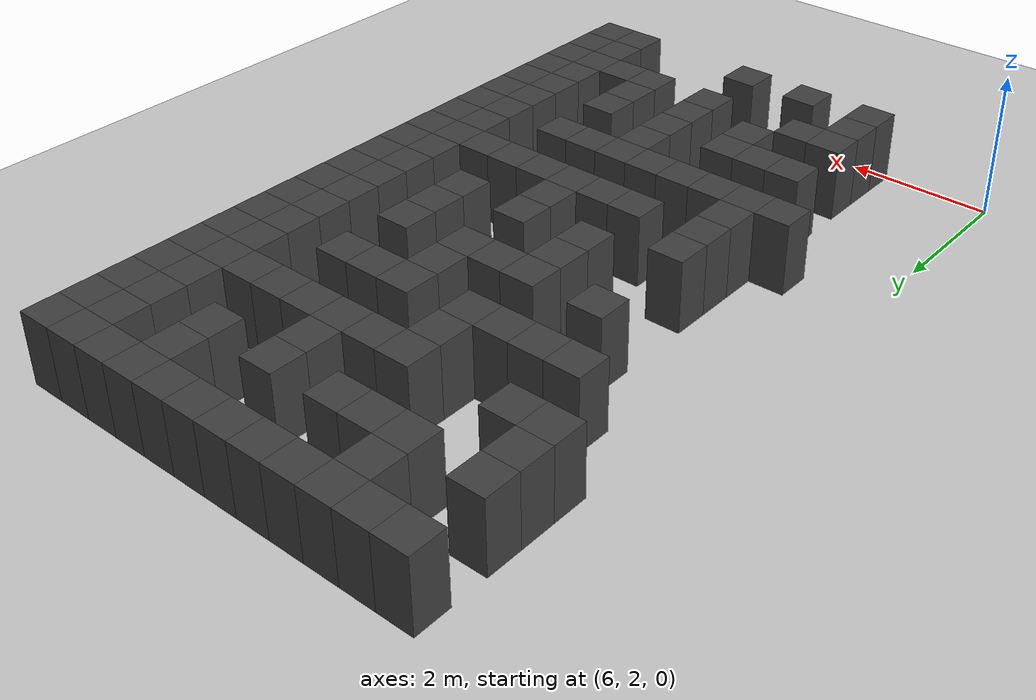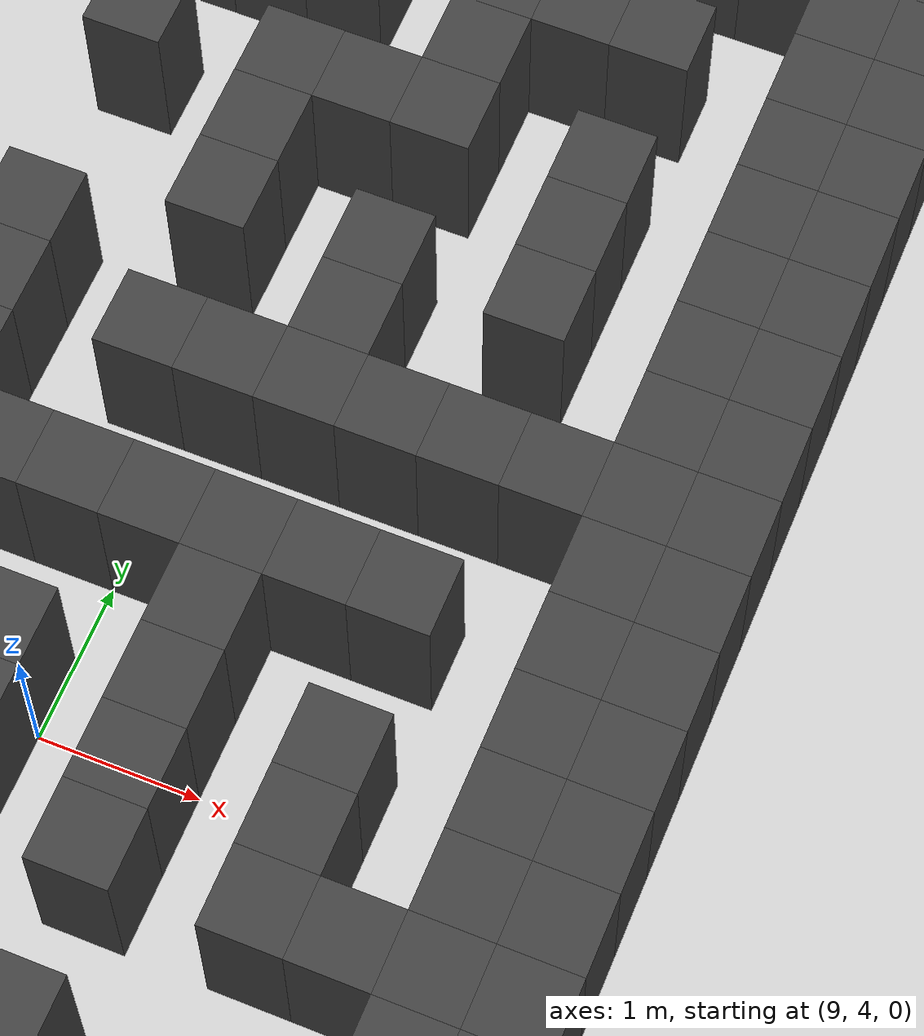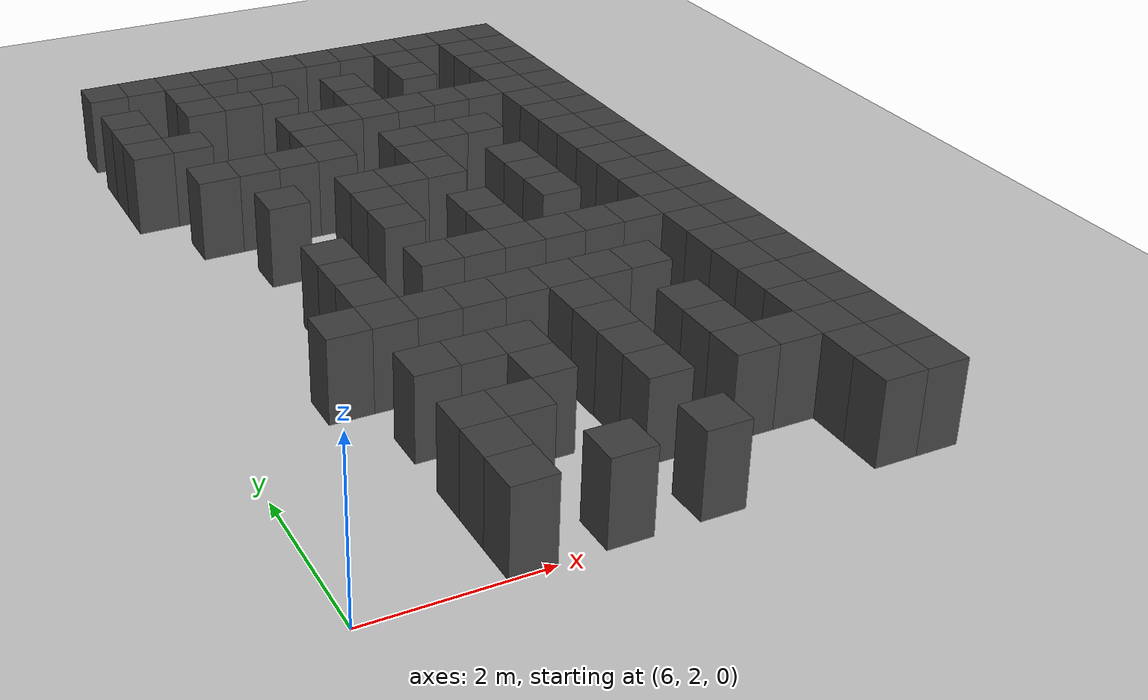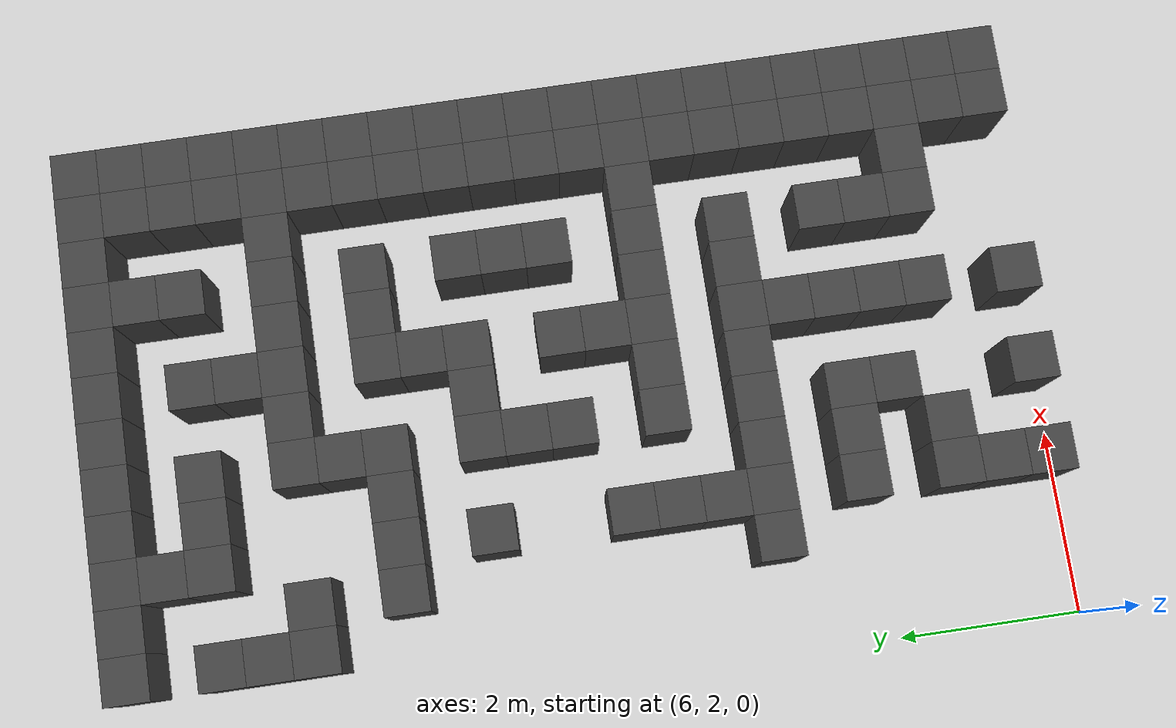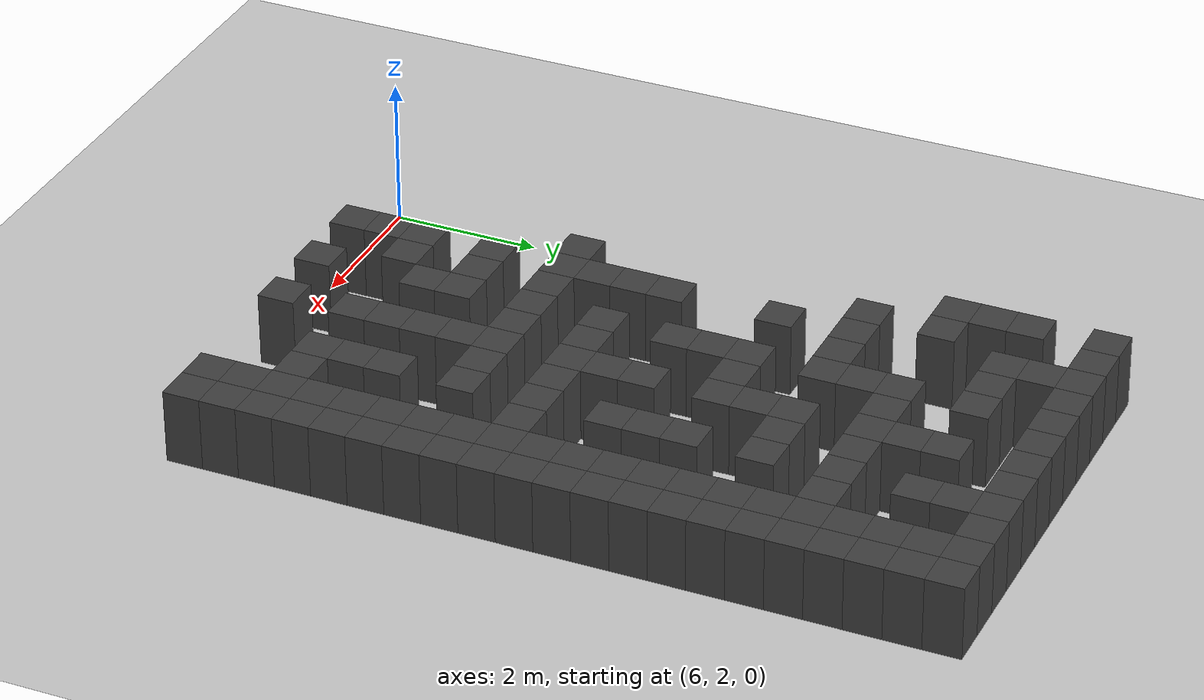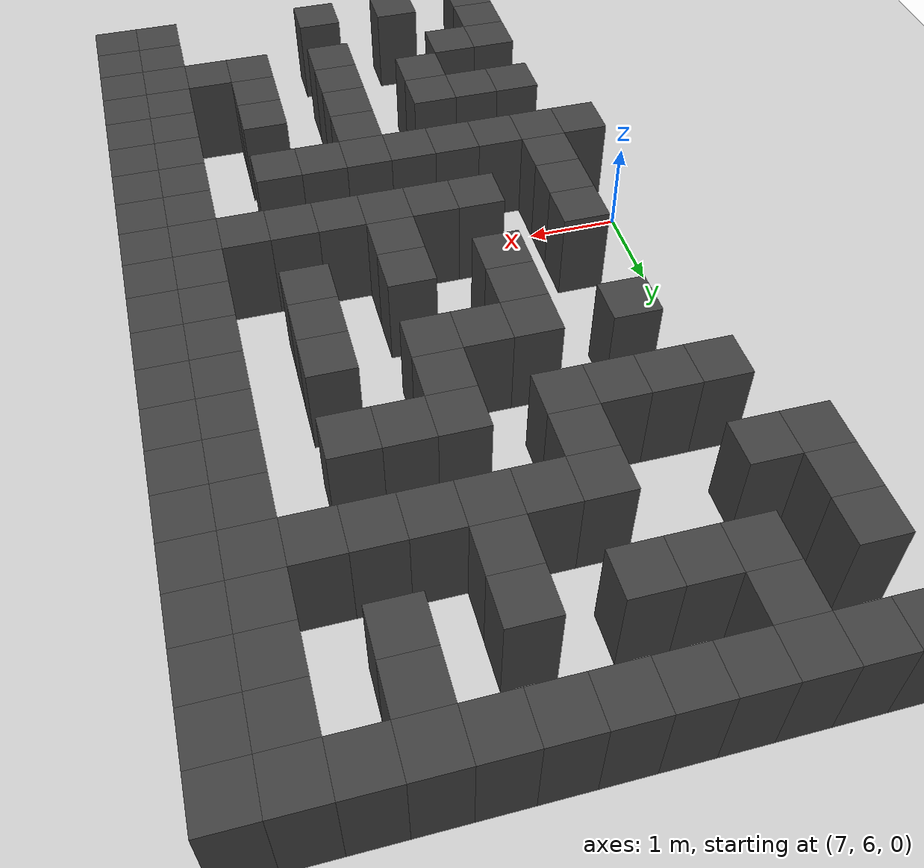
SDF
<sdf version="1.7">
 <world name="map_16783">
  <model name="ground_plane">
   <static>true</static>
   <link name="link">
    <collision name="collision">
     <geometry><plane><normal>0 0 1</normal><size>200 200</size></plane></geometry>
    </collision>
    <visual name="visual">
     <geometry><plane><normal>0 0 1</normal><size>200 200</size></plane></geometry>
     <material><ambient>0.8 0.8 0.8 1</ambient><diffuse>0.8 0.8 0.8 1</diffuse></material>
    </visual>
   </link>
  </model>
  <model name="maze_environment">
   <static>true</static>
   <link name="wall_38">
    <pose>6.750 12.250 0.500 0 0 0</pose>
    <collision name="col"><geometry><box><size>0.5 0.5 1.0</size></box></geometry></collision>
    <visual name="vis">
     <geometry><box><size>0.5 0.5 1.0</size></box></geometry>
     <material><ambient>0.15 0.15 0.15 1</ambient><diffuse>0.25 0.25 0.25 1</diffuse></material>
    </visual>
   </link>
   <link name="wall_39">
    <pose>7.250 12.250 0.500 0 0 0</pose>
    <collision name="col"><geometry><box><size>0.5 0.5 1.0</size></box></geometry></collision>
    <visual name="vis">
     <geometry><box><size>0.5 0.5 1.0</size></box></geometry>
     <material><ambient>0.15 0.15 0.15 1</ambient><diffuse>0.25 0.25 0.25 1</diffuse></material>
    </visual>
   </link>
   <link name="wall_40">
    <pose>7.750 12.250 0.500 0 0 0</pose>
    <collision name="col"><geometry><box><size>0.5 0.5 1.0</size></box></geometry></collision>
    <visual name="vis">
     <geometry><box><size>0.5 0.5 1.0</size></box></geometry>
     <material><ambient>0.15 0.15 0.15 1</ambient><diffuse>0.25 0.25 0.25 1</diffuse></material>
    </visual>
   </link>
   <link name="wall_41">
    <pose>8.250 12.250 0.500 0 0 0</pose>
    <collision name="col"><geometry><box><size>0.5 0.5 1.0</size></box></geometry></collision>
    <visual name="vis">
     <geometry><box><size>0.5 0.5 1.0</size></box></geometry>
     <material><ambient>0.15 0.15 0.15 1</ambient><diffuse>0.25 0.25 0.25 1</diffuse></material>
    </visual>
   </link>
   <link name="wall_42">
    <pose>8.750 12.250 0.500 0 0 0</pose>
    <collision name="col"><geometry><box><size>0.5 0.5 1.0</size></box></geometry></collision>
    <visual name="vis">
     <geometry><box><size>0.5 0.5 1.0</size></box></geometry>
     <material><ambient>0.15 0.15 0.15 1</ambient><diffuse>0.25 0.25 0.25 1</diffuse></material>
    </visual>
   </link>
   <link name="wall_43">
    <pose>9.250 12.250 0.500 0 0 0</pose>
    <collision name="col"><geometry><box><size>0.5 0.5 1.0</size></box></geometry></collision>
    <visual name="vis">
     <geometry><box><size>0.5 0.5 1.0</size></box></geometry>
     <material><ambient>0.15 0.15 0.15 1</ambient><diffuse>0.25 0.25 0.25 1</diffuse></material>
    </visual>
   </link>
   <link name="wall_44">
    <pose>9.750 12.250 0.500 0 0 0</pose>
    <collision name="col"><geometry><box><size>0.5 0.5 1.0</size></box></geometry></collision>
    <visual name="vis">
     <geometry><box><size>0.5 0.5 1.0</size></box></geometry>
     <material><ambient>0.15 0.15 0.15 1</ambient><diffuse>0.25 0.25 0.25 1</diffuse></material>
    </visual>
   </link>
   <link name="wall_45">
    <pose>10.250 12.250 0.500 0 0 0</pose>
    <collision name="col"><geometry><box><size>0.5 0.5 1.0</size></box></geometry></collision>
    <visual name="vis">
     <geometry><box><size>0.5 0.5 1.0</size></box></geometry>
     <material><ambient>0.15 0.15 0.15 1</ambient><diffuse>0.25 0.25 0.25 1</diffuse></material>
    </visual>
   </link>
   <link name="wall_46">
    <pose>10.750 12.250 0.500 0 0 0</pose>
    <collision name="col"><geometry><box><size>0.5 0.5 1.0</size></box></geometry></collision>
    <visual name="vis">
     <geometry><box><size>0.5 0.5 1.0</size></box></geometry>
     <material><ambient>0.15 0.15 0.15 1</ambient><diffuse>0.25 0.25 0.25 1</diffuse></material>
    </visual>
   </link>
   <link name="wall_47">
    <pose>11.250 12.250 0.500 0 0 0</pose>
    <collision name="col"><geometry><box><size>0.5 0.5 1.0</size></box></geometry></collision>
    <visual name="vis">
     <geometry><box><size>0.5 0.5 1.0</size></box></geometry>
     <material><ambient>0.15 0.15 0.15 1</ambient><diffuse>0.25 0.25 0.25 1</diffuse></material>
    </visual>
   </link>
   <link name="wall_48">
    <pose>11.750 12.250 0.500 0 0 0</pose>
    <collision name="col"><geometry><box><size>0.5 0.5 1.0</size></box></geometry></collision>
    <visual name="vis">
     <geometry><box><size>0.5 0.5 1.0</size></box></geometry>
     <material><ambient>0.15 0.15 0.15 1</ambient><diffuse>0.25 0.25 0.25 1</diffuse></material>
    </visual>
   </link>
   <link name="wall_49">
    <pose>12.250 12.250 0.500 0 0 0</pose>
    <collision name="col"><geometry><box><size>0.5 0.5 1.0</size></box></geometry></collision>
    <visual name="vis">
     <geometry><box><size>0.5 0.5 1.0</size></box></geometry>
     <material><ambient>0.15 0.15 0.15 1</ambient><diffuse>0.25 0.25 0.25 1</diffuse></material>
    </visual>
   </link>
   <link name="wall_56">
    <pose>7.750 11.750 0.500 0 0 0</pose>
    <collision name="col"><geometry><box><size>0.5 0.5 1.0</size></box></geometry></collision>
    <visual name="vis">
     <geometry><box><size>0.5 0.5 1.0</size></box></geometry>
     <material><ambient>0.15 0.15 0.15 1</ambient><diffuse>0.25 0.25 0.25 1</diffuse></material>
    </visual>
   </link>
   <link name="wall_57">
    <pose>10.750 11.750 0.500 0 0 0</pose>
    <collision name="col"><geometry><box><size>0.5 0.5 1.0</size></box></geometry></collision>
    <visual name="vis">
     <geometry><box><size>0.5 0.5 1.0</size></box></geometry>
     <material><ambient>0.15 0.15 0.15 1</ambient><diffuse>0.25 0.25 0.25 1</diffuse></material>
    </visual>
   </link>
   <link name="wall_58">
    <pose>11.750 11.750 0.500 0 0 0</pose>
    <collision name="col"><geometry><box><size>0.5 0.5 1.0</size></box></geometry></collision>
    <visual name="vis">
     <geometry><box><size>0.5 0.5 1.0</size></box></geometry>
     <material><ambient>0.15 0.15 0.15 1</ambient><diffuse>0.25 0.25 0.25 1</diffuse></material>
    </visual>
   </link>
   <link name="wall_59">
    <pose>12.250 11.750 0.500 0 0 0</pose>
    <collision name="col"><geometry><box><size>0.5 0.5 1.0</size></box></geometry></collision>
    <visual name="vis">
     <geometry><box><size>0.5 0.5 1.0</size></box></geometry>
     <material><ambient>0.15 0.15 0.15 1</ambient><diffuse>0.25 0.25 0.25 1</diffuse></material>
    </visual>
   </link>
   <link name="wall_85">
    <pose>6.750 11.250 0.500 0 0 0</pose>
    <collision name="col"><geometry><box><size>0.5 0.5 1.0</size></box></geometry></collision>
    <visual name="vis">
     <geometry><box><size>0.5 0.5 1.0</size></box></geometry>
     <material><ambient>0.15 0.15 0.15 1</ambient><diffuse>0.25 0.25 0.25 1</diffuse></material>
    </visual>
   </link>
   <link name="wall_86">
    <pose>7.750 11.250 0.500 0 0 0</pose>
    <collision name="col"><geometry><box><size>0.5 0.5 1.0</size></box></geometry></collision>
    <visual name="vis">
     <geometry><box><size>0.5 0.5 1.0</size></box></geometry>
     <material><ambient>0.15 0.15 0.15 1</ambient><diffuse>0.25 0.25 0.25 1</diffuse></material>
    </visual>
   </link>
   <link name="wall_87">
    <pose>8.250 11.250 0.500 0 0 0</pose>
    <collision name="col"><geometry><box><size>0.5 0.5 1.0</size></box></geometry></collision>
    <visual name="vis">
     <geometry><box><size>0.5 0.5 1.0</size></box></geometry>
     <material><ambient>0.15 0.15 0.15 1</ambient><diffuse>0.25 0.25 0.25 1</diffuse></material>
    </visual>
   </link>
   <link name="wall_88">
    <pose>8.750 11.250 0.500 0 0 0</pose>
    <collision name="col"><geometry><box><size>0.5 0.5 1.0</size></box></geometry></collision>
    <visual name="vis">
     <geometry><box><size>0.5 0.5 1.0</size></box></geometry>
     <material><ambient>0.15 0.15 0.15 1</ambient><diffuse>0.25 0.25 0.25 1</diffuse></material>
    </visual>
   </link>
   <link name="wall_89">
    <pose>9.750 11.250 0.500 0 0 0</pose>
    <collision name="col"><geometry><box><size>0.5 0.5 1.0</size></box></geometry></collision>
    <visual name="vis">
     <geometry><box><size>0.5 0.5 1.0</size></box></geometry>
     <material><ambient>0.15 0.15 0.15 1</ambient><diffuse>0.25 0.25 0.25 1</diffuse></material>
    </visual>
   </link>
   <link name="wall_90">
    <pose>10.750 11.250 0.500 0 0 0</pose>
    <collision name="col"><geometry><box><size>0.5 0.5 1.0</size></box></geometry></collision>
    <visual name="vis">
     <geometry><box><size>0.5 0.5 1.0</size></box></geometry>
     <material><ambient>0.15 0.15 0.15 1</ambient><diffuse>0.25 0.25 0.25 1</diffuse></material>
    </visual>
   </link>
   <link name="wall_91">
    <pose>11.750 11.250 0.500 0 0 0</pose>
    <collision name="col"><geometry><box><size>0.5 0.5 1.0</size></box></geometry></collision>
    <visual name="vis">
     <geometry><box><size>0.5 0.5 1.0</size></box></geometry>
     <material><ambient>0.15 0.15 0.15 1</ambient><diffuse>0.25 0.25 0.25 1</diffuse></material>
    </visual>
   </link>
   <link name="wall_92">
    <pose>12.250 11.250 0.500 0 0 0</pose>
    <collision name="col"><geometry><box><size>0.5 0.5 1.0</size></box></geometry></collision>
    <visual name="vis">
     <geometry><box><size>0.5 0.5 1.0</size></box></geometry>
     <material><ambient>0.15 0.15 0.15 1</ambient><diffuse>0.25 0.25 0.25 1</diffuse></material>
    </visual>
   </link>
   <link name="wall_103">
    <pose>6.750 10.750 0.500 0 0 0</pose>
    <collision name="col"><geometry><box><size>0.5 0.5 1.0</size></box></geometry></collision>
    <visual name="vis">
     <geometry><box><size>0.5 0.5 1.0</size></box></geometry>
     <material><ambient>0.15 0.15 0.15 1</ambient><diffuse>0.25 0.25 0.25 1</diffuse></material>
    </visual>
   </link>
   <link name="wall_104">
    <pose>9.750 10.750 0.500 0 0 0</pose>
    <collision name="col"><geometry><box><size>0.5 0.5 1.0</size></box></geometry></collision>
    <visual name="vis">
     <geometry><box><size>0.5 0.5 1.0</size></box></geometry>
     <material><ambient>0.15 0.15 0.15 1</ambient><diffuse>0.25 0.25 0.25 1</diffuse></material>
    </visual>
   </link>
   <link name="wall_105">
    <pose>11.750 10.750 0.500 0 0 0</pose>
    <collision name="col"><geometry><box><size>0.5 0.5 1.0</size></box></geometry></collision>
    <visual name="vis">
     <geometry><box><size>0.5 0.5 1.0</size></box></geometry>
     <material><ambient>0.15 0.15 0.15 1</ambient><diffuse>0.25 0.25 0.25 1</diffuse></material>
    </visual>
   </link>
   <link name="wall_106">
    <pose>12.250 10.750 0.500 0 0 0</pose>
    <collision name="col"><geometry><box><size>0.5 0.5 1.0</size></box></geometry></collision>
    <visual name="vis">
     <geometry><box><size>0.5 0.5 1.0</size></box></geometry>
     <material><ambient>0.15 0.15 0.15 1</ambient><diffuse>0.25 0.25 0.25 1</diffuse></material>
    </visual>
   </link>
   <link name="wall_132">
    <pose>6.750 10.250 0.500 0 0 0</pose>
    <collision name="col"><geometry><box><size>0.5 0.5 1.0</size></box></geometry></collision>
    <visual name="vis">
     <geometry><box><size>0.5 0.5 1.0</size></box></geometry>
     <material><ambient>0.15 0.15 0.15 1</ambient><diffuse>0.25 0.25 0.25 1</diffuse></material>
    </visual>
   </link>
   <link name="wall_133">
    <pose>7.250 10.250 0.500 0 0 0</pose>
    <collision name="col"><geometry><box><size>0.5 0.5 1.0</size></box></geometry></collision>
    <visual name="vis">
     <geometry><box><size>0.5 0.5 1.0</size></box></geometry>
     <material><ambient>0.15 0.15 0.15 1</ambient><diffuse>0.25 0.25 0.25 1</diffuse></material>
    </visual>
   </link>
   <link name="wall_134">
    <pose>8.750 10.250 0.500 0 0 0</pose>
    <collision name="col"><geometry><box><size>0.5 0.5 1.0</size></box></geometry></collision>
    <visual name="vis">
     <geometry><box><size>0.5 0.5 1.0</size></box></geometry>
     <material><ambient>0.15 0.15 0.15 1</ambient><diffuse>0.25 0.25 0.25 1</diffuse></material>
    </visual>
   </link>
   <link name="wall_135">
    <pose>9.250 10.250 0.500 0 0 0</pose>
    <collision name="col"><geometry><box><size>0.5 0.5 1.0</size></box></geometry></collision>
    <visual name="vis">
     <geometry><box><size>0.5 0.5 1.0</size></box></geometry>
     <material><ambient>0.15 0.15 0.15 1</ambient><diffuse>0.25 0.25 0.25 1</diffuse></material>
    </visual>
   </link>
   <link name="wall_136">
    <pose>9.750 10.250 0.500 0 0 0</pose>
    <collision name="col"><geometry><box><size>0.5 0.5 1.0</size></box></geometry></collision>
    <visual name="vis">
     <geometry><box><size>0.5 0.5 1.0</size></box></geometry>
     <material><ambient>0.15 0.15 0.15 1</ambient><diffuse>0.25 0.25 0.25 1</diffuse></material>
    </visual>
   </link>
   <link name="wall_137">
    <pose>10.250 10.250 0.500 0 0 0</pose>
    <collision name="col"><geometry><box><size>0.5 0.5 1.0</size></box></geometry></collision>
    <visual name="vis">
     <geometry><box><size>0.5 0.5 1.0</size></box></geometry>
     <material><ambient>0.15 0.15 0.15 1</ambient><diffuse>0.25 0.25 0.25 1</diffuse></material>
    </visual>
   </link>
   <link name="wall_138">
    <pose>10.750 10.250 0.500 0 0 0</pose>
    <collision name="col"><geometry><box><size>0.5 0.5 1.0</size></box></geometry></collision>
    <visual name="vis">
     <geometry><box><size>0.5 0.5 1.0</size></box></geometry>
     <material><ambient>0.15 0.15 0.15 1</ambient><diffuse>0.25 0.25 0.25 1</diffuse></material>
    </visual>
   </link>
   <link name="wall_139">
    <pose>11.250 10.250 0.500 0 0 0</pose>
    <collision name="col"><geometry><box><size>0.5 0.5 1.0</size></box></geometry></collision>
    <visual name="vis">
     <geometry><box><size>0.5 0.5 1.0</size></box></geometry>
     <material><ambient>0.15 0.15 0.15 1</ambient><diffuse>0.25 0.25 0.25 1</diffuse></material>
    </visual>
   </link>
   <link name="wall_140">
    <pose>11.750 10.250 0.500 0 0 0</pose>
    <collision name="col"><geometry><box><size>0.5 0.5 1.0</size></box></geometry></collision>
    <visual name="vis">
     <geometry><box><size>0.5 0.5 1.0</size></box></geometry>
     <material><ambient>0.15 0.15 0.15 1</ambient><diffuse>0.25 0.25 0.25 1</diffuse></material>
    </visual>
   </link>
   <link name="wall_141">
    <pose>12.250 10.250 0.500 0 0 0</pose>
    <collision name="col"><geometry><box><size>0.5 0.5 1.0</size></box></geometry></collision>
    <visual name="vis">
     <geometry><box><size>0.5 0.5 1.0</size></box></geometry>
     <material><ambient>0.15 0.15 0.15 1</ambient><diffuse>0.25 0.25 0.25 1</diffuse></material>
    </visual>
   </link>
   <link name="wall_151">
    <pose>8.750 9.750 0.500 0 0 0</pose>
    <collision name="col"><geometry><box><size>0.5 0.5 1.0</size></box></geometry></collision>
    <visual name="vis">
     <geometry><box><size>0.5 0.5 1.0</size></box></geometry>
     <material><ambient>0.15 0.15 0.15 1</ambient><diffuse>0.25 0.25 0.25 1</diffuse></material>
    </visual>
   </link>
   <link name="wall_152">
    <pose>11.750 9.750 0.500 0 0 0</pose>
    <collision name="col"><geometry><box><size>0.5 0.5 1.0</size></box></geometry></collision>
    <visual name="vis">
     <geometry><box><size>0.5 0.5 1.0</size></box></geometry>
     <material><ambient>0.15 0.15 0.15 1</ambient><diffuse>0.25 0.25 0.25 1</diffuse></material>
    </visual>
   </link>
   <link name="wall_153">
    <pose>12.250 9.750 0.500 0 0 0</pose>
    <collision name="col"><geometry><box><size>0.5 0.5 1.0</size></box></geometry></collision>
    <visual name="vis">
     <geometry><box><size>0.5 0.5 1.0</size></box></geometry>
     <material><ambient>0.15 0.15 0.15 1</ambient><diffuse>0.25 0.25 0.25 1</diffuse></material>
    </visual>
   </link>
   <link name="wall_179">
    <pose>7.250 9.250 0.500 0 0 0</pose>
    <collision name="col"><geometry><box><size>0.5 0.5 1.0</size></box></geometry></collision>
    <visual name="vis">
     <geometry><box><size>0.5 0.5 1.0</size></box></geometry>
     <material><ambient>0.15 0.15 0.15 1</ambient><diffuse>0.25 0.25 0.25 1</diffuse></material>
    </visual>
   </link>
   <link name="wall_180">
    <pose>7.750 9.250 0.500 0 0 0</pose>
    <collision name="col"><geometry><box><size>0.5 0.5 1.0</size></box></geometry></collision>
    <visual name="vis">
     <geometry><box><size>0.5 0.5 1.0</size></box></geometry>
     <material><ambient>0.15 0.15 0.15 1</ambient><diffuse>0.25 0.25 0.25 1</diffuse></material>
    </visual>
   </link>
   <link name="wall_181">
    <pose>8.250 9.250 0.500 0 0 0</pose>
    <collision name="col"><geometry><box><size>0.5 0.5 1.0</size></box></geometry></collision>
    <visual name="vis">
     <geometry><box><size>0.5 0.5 1.0</size></box></geometry>
     <material><ambient>0.15 0.15 0.15 1</ambient><diffuse>0.25 0.25 0.25 1</diffuse></material>
    </visual>
   </link>
   <link name="wall_182">
    <pose>8.750 9.250 0.500 0 0 0</pose>
    <collision name="col"><geometry><box><size>0.5 0.5 1.0</size></box></geometry></collision>
    <visual name="vis">
     <geometry><box><size>0.5 0.5 1.0</size></box></geometry>
     <material><ambient>0.15 0.15 0.15 1</ambient><diffuse>0.25 0.25 0.25 1</diffuse></material>
    </visual>
   </link>
   <link name="wall_183">
    <pose>9.750 9.250 0.500 0 0 0</pose>
    <collision name="col"><geometry><box><size>0.5 0.5 1.0</size></box></geometry></collision>
    <visual name="vis">
     <geometry><box><size>0.5 0.5 1.0</size></box></geometry>
     <material><ambient>0.15 0.15 0.15 1</ambient><diffuse>0.25 0.25 0.25 1</diffuse></material>
    </visual>
   </link>
   <link name="wall_184">
    <pose>10.250 9.250 0.500 0 0 0</pose>
    <collision name="col"><geometry><box><size>0.5 0.5 1.0</size></box></geometry></collision>
    <visual name="vis">
     <geometry><box><size>0.5 0.5 1.0</size></box></geometry>
     <material><ambient>0.15 0.15 0.15 1</ambient><diffuse>0.25 0.25 0.25 1</diffuse></material>
    </visual>
   </link>
   <link name="wall_185">
    <pose>10.750 9.250 0.500 0 0 0</pose>
    <collision name="col"><geometry><box><size>0.5 0.5 1.0</size></box></geometry></collision>
    <visual name="vis">
     <geometry><box><size>0.5 0.5 1.0</size></box></geometry>
     <material><ambient>0.15 0.15 0.15 1</ambient><diffuse>0.25 0.25 0.25 1</diffuse></material>
    </visual>
   </link>
   <link name="wall_186">
    <pose>11.750 9.250 0.500 0 0 0</pose>
    <collision name="col"><geometry><box><size>0.5 0.5 1.0</size></box></geometry></collision>
    <visual name="vis">
     <geometry><box><size>0.5 0.5 1.0</size></box></geometry>
     <material><ambient>0.15 0.15 0.15 1</ambient><diffuse>0.25 0.25 0.25 1</diffuse></material>
    </visual>
   </link>
   <link name="wall_187">
    <pose>12.250 9.250 0.500 0 0 0</pose>
    <collision name="col"><geometry><box><size>0.5 0.5 1.0</size></box></geometry></collision>
    <visual name="vis">
     <geometry><box><size>0.5 0.5 1.0</size></box></geometry>
     <material><ambient>0.15 0.15 0.15 1</ambient><diffuse>0.25 0.25 0.25 1</diffuse></material>
    </visual>
   </link>
   <link name="wall_198">
    <pose>9.750 8.750 0.500 0 0 0</pose>
    <collision name="col"><geometry><box><size>0.5 0.5 1.0</size></box></geometry></collision>
    <visual name="vis">
     <geometry><box><size>0.5 0.5 1.0</size></box></geometry>
     <material><ambient>0.15 0.15 0.15 1</ambient><diffuse>0.25 0.25 0.25 1</diffuse></material>
    </visual>
   </link>
   <link name="wall_199">
    <pose>11.750 8.750 0.500 0 0 0</pose>
    <collision name="col"><geometry><box><size>0.5 0.5 1.0</size></box></geometry></collision>
    <visual name="vis">
     <geometry><box><size>0.5 0.5 1.0</size></box></geometry>
     <material><ambient>0.15 0.15 0.15 1</ambient><diffuse>0.25 0.25 0.25 1</diffuse></material>
    </visual>
   </link>
   <link name="wall_200">
    <pose>12.250 8.750 0.500 0 0 0</pose>
    <collision name="col"><geometry><box><size>0.5 0.5 1.0</size></box></geometry></collision>
    <visual name="vis">
     <geometry><box><size>0.5 0.5 1.0</size></box></geometry>
     <material><ambient>0.15 0.15 0.15 1</ambient><diffuse>0.25 0.25 0.25 1</diffuse></material>
    </visual>
   </link>
   <link name="wall_229">
    <pose>7.750 8.250 0.500 0 0 0</pose>
    <collision name="col"><geometry><box><size>0.5 0.5 1.0</size></box></geometry></collision>
    <visual name="vis">
     <geometry><box><size>0.5 0.5 1.0</size></box></geometry>
     <material><ambient>0.15 0.15 0.15 1</ambient><diffuse>0.25 0.25 0.25 1</diffuse></material>
    </visual>
   </link>
   <link name="wall_230">
    <pose>8.750 8.250 0.500 0 0 0</pose>
    <collision name="col"><geometry><box><size>0.5 0.5 1.0</size></box></geometry></collision>
    <visual name="vis">
     <geometry><box><size>0.5 0.5 1.0</size></box></geometry>
     <material><ambient>0.15 0.15 0.15 1</ambient><diffuse>0.25 0.25 0.25 1</diffuse></material>
    </visual>
   </link>
   <link name="wall_231">
    <pose>9.250 8.250 0.500 0 0 0</pose>
    <collision name="col"><geometry><box><size>0.5 0.5 1.0</size></box></geometry></collision>
    <visual name="vis">
     <geometry><box><size>0.5 0.5 1.0</size></box></geometry>
     <material><ambient>0.15 0.15 0.15 1</ambient><diffuse>0.25 0.25 0.25 1</diffuse></material>
    </visual>
   </link>
   <link name="wall_232">
    <pose>9.750 8.250 0.500 0 0 0</pose>
    <collision name="col"><geometry><box><size>0.5 0.5 1.0</size></box></geometry></collision>
    <visual name="vis">
     <geometry><box><size>0.5 0.5 1.0</size></box></geometry>
     <material><ambient>0.15 0.15 0.15 1</ambient><diffuse>0.25 0.25 0.25 1</diffuse></material>
    </visual>
   </link>
   <link name="wall_233">
    <pose>10.750 8.250 0.500 0 0 0</pose>
    <collision name="col"><geometry><box><size>0.5 0.5 1.0</size></box></geometry></collision>
    <visual name="vis">
     <geometry><box><size>0.5 0.5 1.0</size></box></geometry>
     <material><ambient>0.15 0.15 0.15 1</ambient><diffuse>0.25 0.25 0.25 1</diffuse></material>
    </visual>
   </link>
   <link name="wall_234">
    <pose>11.750 8.250 0.500 0 0 0</pose>
    <collision name="col"><geometry><box><size>0.5 0.5 1.0</size></box></geometry></collision>
    <visual name="vis">
     <geometry><box><size>0.5 0.5 1.0</size></box></geometry>
     <material><ambient>0.15 0.15 0.15 1</ambient><diffuse>0.25 0.25 0.25 1</diffuse></material>
    </visual>
   </link>
   <link name="wall_235">
    <pose>12.250 8.250 0.500 0 0 0</pose>
    <collision name="col"><geometry><box><size>0.5 0.5 1.0</size></box></geometry></collision>
    <visual name="vis">
     <geometry><box><size>0.5 0.5 1.0</size></box></geometry>
     <material><ambient>0.15 0.15 0.15 1</ambient><diffuse>0.25 0.25 0.25 1</diffuse></material>
    </visual>
   </link>
   <link name="wall_246">
    <pose>8.750 7.750 0.500 0 0 0</pose>
    <collision name="col"><geometry><box><size>0.5 0.5 1.0</size></box></geometry></collision>
    <visual name="vis">
     <geometry><box><size>0.5 0.5 1.0</size></box></geometry>
     <material><ambient>0.15 0.15 0.15 1</ambient><diffuse>0.25 0.25 0.25 1</diffuse></material>
    </visual>
   </link>
   <link name="wall_247">
    <pose>10.750 7.750 0.500 0 0 0</pose>
    <collision name="col"><geometry><box><size>0.5 0.5 1.0</size></box></geometry></collision>
    <visual name="vis">
     <geometry><box><size>0.5 0.5 1.0</size></box></geometry>
     <material><ambient>0.15 0.15 0.15 1</ambient><diffuse>0.25 0.25 0.25 1</diffuse></material>
    </visual>
   </link>
   <link name="wall_248">
    <pose>11.750 7.750 0.500 0 0 0</pose>
    <collision name="col"><geometry><box><size>0.5 0.5 1.0</size></box></geometry></collision>
    <visual name="vis">
     <geometry><box><size>0.5 0.5 1.0</size></box></geometry>
     <material><ambient>0.15 0.15 0.15 1</ambient><diffuse>0.25 0.25 0.25 1</diffuse></material>
    </visual>
   </link>
   <link name="wall_249">
    <pose>12.250 7.750 0.500 0 0 0</pose>
    <collision name="col"><geometry><box><size>0.5 0.5 1.0</size></box></geometry></collision>
    <visual name="vis">
     <geometry><box><size>0.5 0.5 1.0</size></box></geometry>
     <material><ambient>0.15 0.15 0.15 1</ambient><diffuse>0.25 0.25 0.25 1</diffuse></material>
    </visual>
   </link>
   <link name="wall_276">
    <pose>8.750 7.250 0.500 0 0 0</pose>
    <collision name="col"><geometry><box><size>0.5 0.5 1.0</size></box></geometry></collision>
    <visual name="vis">
     <geometry><box><size>0.5 0.5 1.0</size></box></geometry>
     <material><ambient>0.15 0.15 0.15 1</ambient><diffuse>0.25 0.25 0.25 1</diffuse></material>
    </visual>
   </link>
   <link name="wall_277">
    <pose>9.750 7.250 0.500 0 0 0</pose>
    <collision name="col"><geometry><box><size>0.5 0.5 1.0</size></box></geometry></collision>
    <visual name="vis">
     <geometry><box><size>0.5 0.5 1.0</size></box></geometry>
     <material><ambient>0.15 0.15 0.15 1</ambient><diffuse>0.25 0.25 0.25 1</diffuse></material>
    </visual>
   </link>
   <link name="wall_278">
    <pose>10.750 7.250 0.500 0 0 0</pose>
    <collision name="col"><geometry><box><size>0.5 0.5 1.0</size></box></geometry></collision>
    <visual name="vis">
     <geometry><box><size>0.5 0.5 1.0</size></box></geometry>
     <material><ambient>0.15 0.15 0.15 1</ambient><diffuse>0.25 0.25 0.25 1</diffuse></material>
    </visual>
   </link>
   <link name="wall_279">
    <pose>11.750 7.250 0.500 0 0 0</pose>
    <collision name="col"><geometry><box><size>0.5 0.5 1.0</size></box></geometry></collision>
    <visual name="vis">
     <geometry><box><size>0.5 0.5 1.0</size></box></geometry>
     <material><ambient>0.15 0.15 0.15 1</ambient><diffuse>0.25 0.25 0.25 1</diffuse></material>
    </visual>
   </link>
   <link name="wall_280">
    <pose>12.250 7.250 0.500 0 0 0</pose>
    <collision name="col"><geometry><box><size>0.5 0.5 1.0</size></box></geometry></collision>
    <visual name="vis">
     <geometry><box><size>0.5 0.5 1.0</size></box></geometry>
     <material><ambient>0.15 0.15 0.15 1</ambient><diffuse>0.25 0.25 0.25 1</diffuse></material>
    </visual>
   </link>
   <link name="wall_292">
    <pose>7.750 6.750 0.500 0 0 0</pose>
    <collision name="col"><geometry><box><size>0.5 0.5 1.0</size></box></geometry></collision>
    <visual name="vis">
     <geometry><box><size>0.5 0.5 1.0</size></box></geometry>
     <material><ambient>0.15 0.15 0.15 1</ambient><diffuse>0.25 0.25 0.25 1</diffuse></material>
    </visual>
   </link>
   <link name="wall_293">
    <pose>9.750 6.750 0.500 0 0 0</pose>
    <collision name="col"><geometry><box><size>0.5 0.5 1.0</size></box></geometry></collision>
    <visual name="vis">
     <geometry><box><size>0.5 0.5 1.0</size></box></geometry>
     <material><ambient>0.15 0.15 0.15 1</ambient><diffuse>0.25 0.25 0.25 1</diffuse></material>
    </visual>
   </link>
   <link name="wall_294">
    <pose>11.750 6.750 0.500 0 0 0</pose>
    <collision name="col"><geometry><box><size>0.5 0.5 1.0</size></box></geometry></collision>
    <visual name="vis">
     <geometry><box><size>0.5 0.5 1.0</size></box></geometry>
     <material><ambient>0.15 0.15 0.15 1</ambient><diffuse>0.25 0.25 0.25 1</diffuse></material>
    </visual>
   </link>
   <link name="wall_295">
    <pose>12.250 6.750 0.500 0 0 0</pose>
    <collision name="col"><geometry><box><size>0.5 0.5 1.0</size></box></geometry></collision>
    <visual name="vis">
     <geometry><box><size>0.5 0.5 1.0</size></box></geometry>
     <material><ambient>0.15 0.15 0.15 1</ambient><diffuse>0.25 0.25 0.25 1</diffuse></material>
    </visual>
   </link>
   <link name="wall_323">
    <pose>7.750 6.250 0.500 0 0 0</pose>
    <collision name="col"><geometry><box><size>0.5 0.5 1.0</size></box></geometry></collision>
    <visual name="vis">
     <geometry><box><size>0.5 0.5 1.0</size></box></geometry>
     <material><ambient>0.15 0.15 0.15 1</ambient><diffuse>0.25 0.25 0.25 1</diffuse></material>
    </visual>
   </link>
   <link name="wall_324">
    <pose>8.750 6.250 0.500 0 0 0</pose>
    <collision name="col"><geometry><box><size>0.5 0.5 1.0</size></box></geometry></collision>
    <visual name="vis">
     <geometry><box><size>0.5 0.5 1.0</size></box></geometry>
     <material><ambient>0.15 0.15 0.15 1</ambient><diffuse>0.25 0.25 0.25 1</diffuse></material>
    </visual>
   </link>
   <link name="wall_325">
    <pose>9.250 6.250 0.500 0 0 0</pose>
    <collision name="col"><geometry><box><size>0.5 0.5 1.0</size></box></geometry></collision>
    <visual name="vis">
     <geometry><box><size>0.5 0.5 1.0</size></box></geometry>
     <material><ambient>0.15 0.15 0.15 1</ambient><diffuse>0.25 0.25 0.25 1</diffuse></material>
    </visual>
   </link>
   <link name="wall_326">
    <pose>9.750 6.250 0.500 0 0 0</pose>
    <collision name="col"><geometry><box><size>0.5 0.5 1.0</size></box></geometry></collision>
    <visual name="vis">
     <geometry><box><size>0.5 0.5 1.0</size></box></geometry>
     <material><ambient>0.15 0.15 0.15 1</ambient><diffuse>0.25 0.25 0.25 1</diffuse></material>
    </visual>
   </link>
   <link name="wall_327">
    <pose>10.250 6.250 0.500 0 0 0</pose>
    <collision name="col"><geometry><box><size>0.5 0.5 1.0</size></box></geometry></collision>
    <visual name="vis">
     <geometry><box><size>0.5 0.5 1.0</size></box></geometry>
     <material><ambient>0.15 0.15 0.15 1</ambient><diffuse>0.25 0.25 0.25 1</diffuse></material>
    </visual>
   </link>
   <link name="wall_328">
    <pose>10.750 6.250 0.500 0 0 0</pose>
    <collision name="col"><geometry><box><size>0.5 0.5 1.0</size></box></geometry></collision>
    <visual name="vis">
     <geometry><box><size>0.5 0.5 1.0</size></box></geometry>
     <material><ambient>0.15 0.15 0.15 1</ambient><diffuse>0.25 0.25 0.25 1</diffuse></material>
    </visual>
   </link>
   <link name="wall_329">
    <pose>11.250 6.250 0.500 0 0 0</pose>
    <collision name="col"><geometry><box><size>0.5 0.5 1.0</size></box></geometry></collision>
    <visual name="vis">
     <geometry><box><size>0.5 0.5 1.0</size></box></geometry>
     <material><ambient>0.15 0.15 0.15 1</ambient><diffuse>0.25 0.25 0.25 1</diffuse></material>
    </visual>
   </link>
   <link name="wall_330">
    <pose>11.750 6.250 0.500 0 0 0</pose>
    <collision name="col"><geometry><box><size>0.5 0.5 1.0</size></box></geometry></collision>
    <visual name="vis">
     <geometry><box><size>0.5 0.5 1.0</size></box></geometry>
     <material><ambient>0.15 0.15 0.15 1</ambient><diffuse>0.25 0.25 0.25 1</diffuse></material>
    </visual>
   </link>
   <link name="wall_331">
    <pose>12.250 6.250 0.500 0 0 0</pose>
    <collision name="col"><geometry><box><size>0.5 0.5 1.0</size></box></geometry></collision>
    <visual name="vis">
     <geometry><box><size>0.5 0.5 1.0</size></box></geometry>
     <material><ambient>0.15 0.15 0.15 1</ambient><diffuse>0.25 0.25 0.25 1</diffuse></material>
    </visual>
   </link>
   <link name="wall_340">
    <pose>7.750 5.750 0.500 0 0 0</pose>
    <collision name="col"><geometry><box><size>0.5 0.5 1.0</size></box></geometry></collision>
    <visual name="vis">
     <geometry><box><size>0.5 0.5 1.0</size></box></geometry>
     <material><ambient>0.15 0.15 0.15 1</ambient><diffuse>0.25 0.25 0.25 1</diffuse></material>
    </visual>
   </link>
   <link name="wall_341">
    <pose>11.750 5.750 0.500 0 0 0</pose>
    <collision name="col"><geometry><box><size>0.5 0.5 1.0</size></box></geometry></collision>
    <visual name="vis">
     <geometry><box><size>0.5 0.5 1.0</size></box></geometry>
     <material><ambient>0.15 0.15 0.15 1</ambient><diffuse>0.25 0.25 0.25 1</diffuse></material>
    </visual>
   </link>
   <link name="wall_342">
    <pose>12.250 5.750 0.500 0 0 0</pose>
    <collision name="col"><geometry><box><size>0.5 0.5 1.0</size></box></geometry></collision>
    <visual name="vis">
     <geometry><box><size>0.5 0.5 1.0</size></box></geometry>
     <material><ambient>0.15 0.15 0.15 1</ambient><diffuse>0.25 0.25 0.25 1</diffuse></material>
    </visual>
   </link>
   <link name="wall_373">
    <pose>7.250 5.250 0.500 0 0 0</pose>
    <collision name="col"><geometry><box><size>0.5 0.5 1.0</size></box></geometry></collision>
    <visual name="vis">
     <geometry><box><size>0.5 0.5 1.0</size></box></geometry>
     <material><ambient>0.15 0.15 0.15 1</ambient><diffuse>0.25 0.25 0.25 1</diffuse></material>
    </visual>
   </link>
   <link name="wall_374">
    <pose>7.750 5.250 0.500 0 0 0</pose>
    <collision name="col"><geometry><box><size>0.5 0.5 1.0</size></box></geometry></collision>
    <visual name="vis">
     <geometry><box><size>0.5 0.5 1.0</size></box></geometry>
     <material><ambient>0.15 0.15 0.15 1</ambient><diffuse>0.25 0.25 0.25 1</diffuse></material>
    </visual>
   </link>
   <link name="wall_375">
    <pose>8.250 5.250 0.500 0 0 0</pose>
    <collision name="col"><geometry><box><size>0.5 0.5 1.0</size></box></geometry></collision>
    <visual name="vis">
     <geometry><box><size>0.5 0.5 1.0</size></box></geometry>
     <material><ambient>0.15 0.15 0.15 1</ambient><diffuse>0.25 0.25 0.25 1</diffuse></material>
    </visual>
   </link>
   <link name="wall_376">
    <pose>8.750 5.250 0.500 0 0 0</pose>
    <collision name="col"><geometry><box><size>0.5 0.5 1.0</size></box></geometry></collision>
    <visual name="vis">
     <geometry><box><size>0.5 0.5 1.0</size></box></geometry>
     <material><ambient>0.15 0.15 0.15 1</ambient><diffuse>0.25 0.25 0.25 1</diffuse></material>
    </visual>
   </link>
   <link name="wall_377">
    <pose>9.250 5.250 0.500 0 0 0</pose>
    <collision name="col"><geometry><box><size>0.5 0.5 1.0</size></box></geometry></collision>
    <visual name="vis">
     <geometry><box><size>0.5 0.5 1.0</size></box></geometry>
     <material><ambient>0.15 0.15 0.15 1</ambient><diffuse>0.25 0.25 0.25 1</diffuse></material>
    </visual>
   </link>
   <link name="wall_378">
    <pose>9.750 5.250 0.500 0 0 0</pose>
    <collision name="col"><geometry><box><size>0.5 0.5 1.0</size></box></geometry></collision>
    <visual name="vis">
     <geometry><box><size>0.5 0.5 1.0</size></box></geometry>
     <material><ambient>0.15 0.15 0.15 1</ambient><diffuse>0.25 0.25 0.25 1</diffuse></material>
    </visual>
   </link>
   <link name="wall_379">
    <pose>10.250 5.250 0.500 0 0 0</pose>
    <collision name="col"><geometry><box><size>0.5 0.5 1.0</size></box></geometry></collision>
    <visual name="vis">
     <geometry><box><size>0.5 0.5 1.0</size></box></geometry>
     <material><ambient>0.15 0.15 0.15 1</ambient><diffuse>0.25 0.25 0.25 1</diffuse></material>
    </visual>
   </link>
   <link name="wall_380">
    <pose>10.750 5.250 0.500 0 0 0</pose>
    <collision name="col"><geometry><box><size>0.5 0.5 1.0</size></box></geometry></collision>
    <visual name="vis">
     <geometry><box><size>0.5 0.5 1.0</size></box></geometry>
     <material><ambient>0.15 0.15 0.15 1</ambient><diffuse>0.25 0.25 0.25 1</diffuse></material>
    </visual>
   </link>
   <link name="wall_381">
    <pose>11.750 5.250 0.500 0 0 0</pose>
    <collision name="col"><geometry><box><size>0.5 0.5 1.0</size></box></geometry></collision>
    <visual name="vis">
     <geometry><box><size>0.5 0.5 1.0</size></box></geometry>
     <material><ambient>0.15 0.15 0.15 1</ambient><diffuse>0.25 0.25 0.25 1</diffuse></material>
    </visual>
   </link>
   <link name="wall_382">
    <pose>12.250 5.250 0.500 0 0 0</pose>
    <collision name="col"><geometry><box><size>0.5 0.5 1.0</size></box></geometry></collision>
    <visual name="vis">
     <geometry><box><size>0.5 0.5 1.0</size></box></geometry>
     <material><ambient>0.15 0.15 0.15 1</ambient><diffuse>0.25 0.25 0.25 1</diffuse></material>
    </visual>
   </link>
   <link name="wall_390">
    <pose>9.750 4.750 0.500 0 0 0</pose>
    <collision name="col"><geometry><box><size>0.5 0.5 1.0</size></box></geometry></collision>
    <visual name="vis">
     <geometry><box><size>0.5 0.5 1.0</size></box></geometry>
     <material><ambient>0.15 0.15 0.15 1</ambient><diffuse>0.25 0.25 0.25 1</diffuse></material>
    </visual>
   </link>
   <link name="wall_391">
    <pose>11.750 4.750 0.500 0 0 0</pose>
    <collision name="col"><geometry><box><size>0.5 0.5 1.0</size></box></geometry></collision>
    <visual name="vis">
     <geometry><box><size>0.5 0.5 1.0</size></box></geometry>
     <material><ambient>0.15 0.15 0.15 1</ambient><diffuse>0.25 0.25 0.25 1</diffuse></material>
    </visual>
   </link>
   <link name="wall_392">
    <pose>12.250 4.750 0.500 0 0 0</pose>
    <collision name="col"><geometry><box><size>0.5 0.5 1.0</size></box></geometry></collision>
    <visual name="vis">
     <geometry><box><size>0.5 0.5 1.0</size></box></geometry>
     <material><ambient>0.15 0.15 0.15 1</ambient><diffuse>0.25 0.25 0.25 1</diffuse></material>
    </visual>
   </link>
   <link name="wall_416">
    <pose>7.750 4.250 0.500 0 0 0</pose>
    <collision name="col"><geometry><box><size>0.5 0.5 1.0</size></box></geometry></collision>
    <visual name="vis">
     <geometry><box><size>0.5 0.5 1.0</size></box></geometry>
     <material><ambient>0.15 0.15 0.15 1</ambient><diffuse>0.25 0.25 0.25 1</diffuse></material>
    </visual>
   </link>
   <link name="wall_417">
    <pose>8.250 4.250 0.500 0 0 0</pose>
    <collision name="col"><geometry><box><size>0.5 0.5 1.0</size></box></geometry></collision>
    <visual name="vis">
     <geometry><box><size>0.5 0.5 1.0</size></box></geometry>
     <material><ambient>0.15 0.15 0.15 1</ambient><diffuse>0.25 0.25 0.25 1</diffuse></material>
    </visual>
   </link>
   <link name="wall_418">
    <pose>8.750 4.250 0.500 0 0 0</pose>
    <collision name="col"><geometry><box><size>0.5 0.5 1.0</size></box></geometry></collision>
    <visual name="vis">
     <geometry><box><size>0.5 0.5 1.0</size></box></geometry>
     <material><ambient>0.15 0.15 0.15 1</ambient><diffuse>0.25 0.25 0.25 1</diffuse></material>
    </visual>
   </link>
   <link name="wall_419">
    <pose>9.750 4.250 0.500 0 0 0</pose>
    <collision name="col"><geometry><box><size>0.5 0.5 1.0</size></box></geometry></collision>
    <visual name="vis">
     <geometry><box><size>0.5 0.5 1.0</size></box></geometry>
     <material><ambient>0.15 0.15 0.15 1</ambient><diffuse>0.25 0.25 0.25 1</diffuse></material>
    </visual>
   </link>
   <link name="wall_420">
    <pose>10.750 4.250 0.500 0 0 0</pose>
    <collision name="col"><geometry><box><size>0.5 0.5 1.0</size></box></geometry></collision>
    <visual name="vis">
     <geometry><box><size>0.5 0.5 1.0</size></box></geometry>
     <material><ambient>0.15 0.15 0.15 1</ambient><diffuse>0.25 0.25 0.25 1</diffuse></material>
    </visual>
   </link>
   <link name="wall_421">
    <pose>11.750 4.250 0.500 0 0 0</pose>
    <collision name="col"><geometry><box><size>0.5 0.5 1.0</size></box></geometry></collision>
    <visual name="vis">
     <geometry><box><size>0.5 0.5 1.0</size></box></geometry>
     <material><ambient>0.15 0.15 0.15 1</ambient><diffuse>0.25 0.25 0.25 1</diffuse></material>
    </visual>
   </link>
   <link name="wall_422">
    <pose>12.250 4.250 0.500 0 0 0</pose>
    <collision name="col"><geometry><box><size>0.5 0.5 1.0</size></box></geometry></collision>
    <visual name="vis">
     <geometry><box><size>0.5 0.5 1.0</size></box></geometry>
     <material><ambient>0.15 0.15 0.15 1</ambient><diffuse>0.25 0.25 0.25 1</diffuse></material>
    </visual>
   </link>
   <link name="wall_435">
    <pose>8.750 3.750 0.500 0 0 0</pose>
    <collision name="col"><geometry><box><size>0.5 0.5 1.0</size></box></geometry></collision>
    <visual name="vis">
     <geometry><box><size>0.5 0.5 1.0</size></box></geometry>
     <material><ambient>0.15 0.15 0.15 1</ambient><diffuse>0.25 0.25 0.25 1</diffuse></material>
    </visual>
   </link>
   <link name="wall_436">
    <pose>9.750 3.750 0.500 0 0 0</pose>
    <collision name="col"><geometry><box><size>0.5 0.5 1.0</size></box></geometry></collision>
    <visual name="vis">
     <geometry><box><size>0.5 0.5 1.0</size></box></geometry>
     <material><ambient>0.15 0.15 0.15 1</ambient><diffuse>0.25 0.25 0.25 1</diffuse></material>
    </visual>
   </link>
   <link name="wall_437">
    <pose>10.750 3.750 0.500 0 0 0</pose>
    <collision name="col"><geometry><box><size>0.5 0.5 1.0</size></box></geometry></collision>
    <visual name="vis">
     <geometry><box><size>0.5 0.5 1.0</size></box></geometry>
     <material><ambient>0.15 0.15 0.15 1</ambient><diffuse>0.25 0.25 0.25 1</diffuse></material>
    </visual>
   </link>
   <link name="wall_438">
    <pose>11.750 3.750 0.500 0 0 0</pose>
    <collision name="col"><geometry><box><size>0.5 0.5 1.0</size></box></geometry></collision>
    <visual name="vis">
     <geometry><box><size>0.5 0.5 1.0</size></box></geometry>
     <material><ambient>0.15 0.15 0.15 1</ambient><diffuse>0.25 0.25 0.25 1</diffuse></material>
    </visual>
   </link>
   <link name="wall_439">
    <pose>12.250 3.750 0.500 0 0 0</pose>
    <collision name="col"><geometry><box><size>0.5 0.5 1.0</size></box></geometry></collision>
    <visual name="vis">
     <geometry><box><size>0.5 0.5 1.0</size></box></geometry>
     <material><ambient>0.15 0.15 0.15 1</ambient><diffuse>0.25 0.25 0.25 1</diffuse></material>
    </visual>
   </link>
   <link name="wall_468">
    <pose>7.750 3.250 0.500 0 0 0</pose>
    <collision name="col"><geometry><box><size>0.5 0.5 1.0</size></box></geometry></collision>
    <visual name="vis">
     <geometry><box><size>0.5 0.5 1.0</size></box></geometry>
     <material><ambient>0.15 0.15 0.15 1</ambient><diffuse>0.25 0.25 0.25 1</diffuse></material>
    </visual>
   </link>
   <link name="wall_469">
    <pose>8.250 3.250 0.500 0 0 0</pose>
    <collision name="col"><geometry><box><size>0.5 0.5 1.0</size></box></geometry></collision>
    <visual name="vis">
     <geometry><box><size>0.5 0.5 1.0</size></box></geometry>
     <material><ambient>0.15 0.15 0.15 1</ambient><diffuse>0.25 0.25 0.25 1</diffuse></material>
    </visual>
   </link>
   <link name="wall_470">
    <pose>9.750 3.250 0.500 0 0 0</pose>
    <collision name="col"><geometry><box><size>0.5 0.5 1.0</size></box></geometry></collision>
    <visual name="vis">
     <geometry><box><size>0.5 0.5 1.0</size></box></geometry>
     <material><ambient>0.15 0.15 0.15 1</ambient><diffuse>0.25 0.25 0.25 1</diffuse></material>
    </visual>
   </link>
   <link name="wall_471">
    <pose>10.750 3.250 0.500 0 0 0</pose>
    <collision name="col"><geometry><box><size>0.5 0.5 1.0</size></box></geometry></collision>
    <visual name="vis">
     <geometry><box><size>0.5 0.5 1.0</size></box></geometry>
     <material><ambient>0.15 0.15 0.15 1</ambient><diffuse>0.25 0.25 0.25 1</diffuse></material>
    </visual>
   </link>
   <link name="wall_472">
    <pose>11.250 3.250 0.500 0 0 0</pose>
    <collision name="col"><geometry><box><size>0.5 0.5 1.0</size></box></geometry></collision>
    <visual name="vis">
     <geometry><box><size>0.5 0.5 1.0</size></box></geometry>
     <material><ambient>0.15 0.15 0.15 1</ambient><diffuse>0.25 0.25 0.25 1</diffuse></material>
    </visual>
   </link>
   <link name="wall_473">
    <pose>11.750 3.250 0.500 0 0 0</pose>
    <collision name="col"><geometry><box><size>0.5 0.5 1.0</size></box></geometry></collision>
    <visual name="vis">
     <geometry><box><size>0.5 0.5 1.0</size></box></geometry>
     <material><ambient>0.15 0.15 0.15 1</ambient><diffuse>0.25 0.25 0.25 1</diffuse></material>
    </visual>
   </link>
   <link name="wall_474">
    <pose>12.250 3.250 0.500 0 0 0</pose>
    <collision name="col"><geometry><box><size>0.5 0.5 1.0</size></box></geometry></collision>
    <visual name="vis">
     <geometry><box><size>0.5 0.5 1.0</size></box></geometry>
     <material><ambient>0.15 0.15 0.15 1</ambient><diffuse>0.25 0.25 0.25 1</diffuse></material>
    </visual>
   </link>
   <link name="wall_487">
    <pose>7.750 2.750 0.500 0 0 0</pose>
    <collision name="col"><geometry><box><size>0.5 0.5 1.0</size></box></geometry></collision>
    <visual name="vis">
     <geometry><box><size>0.5 0.5 1.0</size></box></geometry>
     <material><ambient>0.15 0.15 0.15 1</ambient><diffuse>0.25 0.25 0.25 1</diffuse></material>
    </visual>
   </link>
   <link name="wall_488">
    <pose>11.750 2.750 0.500 0 0 0</pose>
    <collision name="col"><geometry><box><size>0.5 0.5 1.0</size></box></geometry></collision>
    <visual name="vis">
     <geometry><box><size>0.5 0.5 1.0</size></box></geometry>
     <material><ambient>0.15 0.15 0.15 1</ambient><diffuse>0.25 0.25 0.25 1</diffuse></material>
    </visual>
   </link>
   <link name="wall_489">
    <pose>12.250 2.750 0.500 0 0 0</pose>
    <collision name="col"><geometry><box><size>0.5 0.5 1.0</size></box></geometry></collision>
    <visual name="vis">
     <geometry><box><size>0.5 0.5 1.0</size></box></geometry>
     <material><ambient>0.15 0.15 0.15 1</ambient><diffuse>0.25 0.25 0.25 1</diffuse></material>
    </visual>
   </link>
   <link name="wall_516">
    <pose>7.750 2.250 0.500 0 0 0</pose>
    <collision name="col"><geometry><box><size>0.5 0.5 1.0</size></box></geometry></collision>
    <visual name="vis">
     <geometry><box><size>0.5 0.5 1.0</size></box></geometry>
     <material><ambient>0.15 0.15 0.15 1</ambient><diffuse>0.25 0.25 0.25 1</diffuse></material>
    </visual>
   </link>
   <link name="wall_517">
    <pose>8.750 2.250 0.500 0 0 0</pose>
    <collision name="col"><geometry><box><size>0.5 0.5 1.0</size></box></geometry></collision>
    <visual name="vis">
     <geometry><box><size>0.5 0.5 1.0</size></box></geometry>
     <material><ambient>0.15 0.15 0.15 1</ambient><diffuse>0.25 0.25 0.25 1</diffuse></material>
    </visual>
   </link>
   <link name="wall_518">
    <pose>9.750 2.250 0.500 0 0 0</pose>
    <collision name="col"><geometry><box><size>0.5 0.5 1.0</size></box></geometry></collision>
    <visual name="vis">
     <geometry><box><size>0.5 0.5 1.0</size></box></geometry>
     <material><ambient>0.15 0.15 0.15 1</ambient><diffuse>0.25 0.25 0.25 1</diffuse></material>
    </visual>
   </link>
   <link name="wall_519">
    <pose>11.750 2.250 0.500 0 0 0</pose>
    <collision name="col"><geometry><box><size>0.5 0.5 1.0</size></box></geometry></collision>
    <visual name="vis">
     <geometry><box><size>0.5 0.5 1.0</size></box></geometry>
     <material><ambient>0.15 0.15 0.15 1</ambient><diffuse>0.25 0.25 0.25 1</diffuse></material>
    </visual>
   </link>
   <link name="wall_520">
    <pose>12.250 2.250 0.500 0 0 0</pose>
    <collision name="col"><geometry><box><size>0.5 0.5 1.0</size></box></geometry></collision>
    <visual name="vis">
     <geometry><box><size>0.5 0.5 1.0</size></box></geometry>
     <material><ambient>0.15 0.15 0.15 1</ambient><diffuse>0.25 0.25 0.25 1</diffuse></material>
    </visual>
   </link>
  </model>
 </world>
</sdf>
